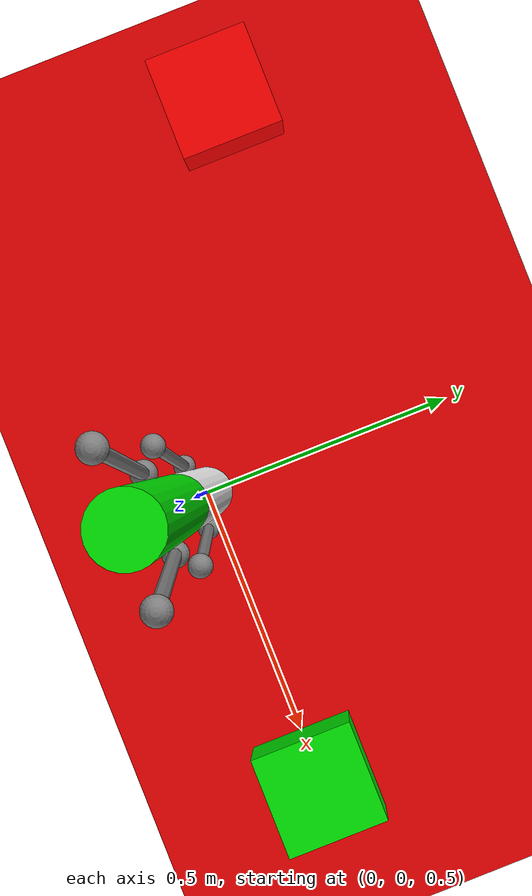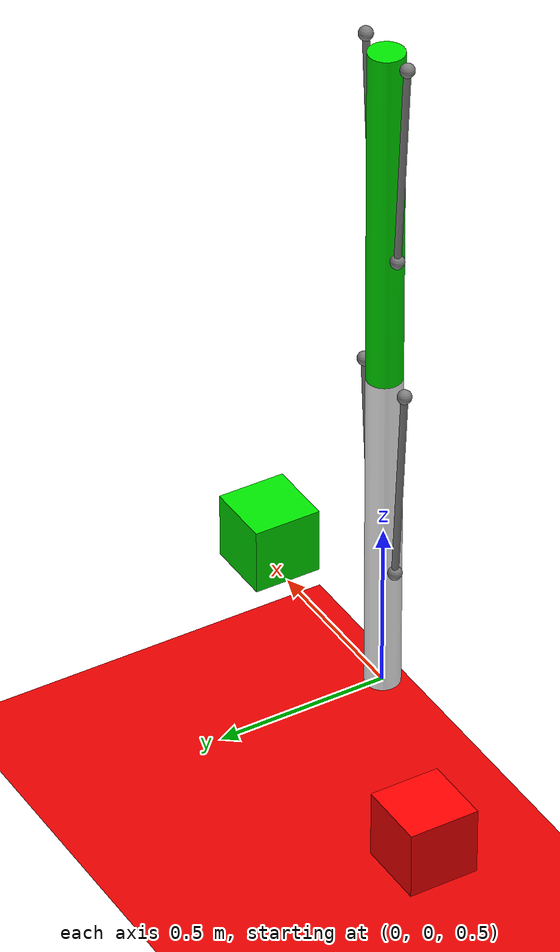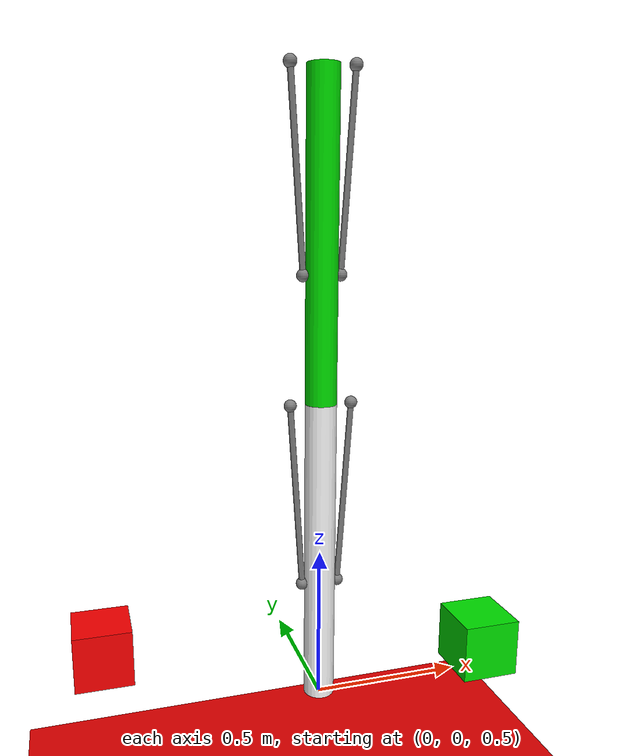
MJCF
<mujoco>
    <!-- min distance from root to endfactor is 1.766, max is 2 -->
    <option timestep="0.001">
		<flag gravity="disable"/>
	</option>
    <size nuserdata="3"/>
   <worldbody>
      <light diffuse=".5 .5 .5" pos="0 0 3" dir="0 0 -1"/>
      <geom type="plane" size="1 1 0.1" rgba=".9 0 0 1"/>

      <site name="s0" pos="0.1 0 2.5" size="0.02"/>
      <site name="s2" pos="-0.1 0 2.5" size="0.02"/>
      <body pos="0 0 1.5" euler="0 0 0">
         <joint name="joint0" type="hinge" axis="0 -1 0" pos="0 0 1" damping="0.001" limited="true" range="-56 56"/>
         <geom name="link0" type="cylinder" pos="0 0 0.5" size="0.05 .5" rgba="0 .9 0 1" mass="1"/>
         <site name="s1" pos="0.06 0 0.4" size="0.02"/>
         <site name="s3" pos="-0.06 0 0.4" size="0.02"/>
         <site name="s4" pos="0.1 0 0" size="0.02"/>
         <site name="s5" pos="-0.1 0 0" size="0.02"/>
         <body pos="0 0 -1" euler="0 0 0">
            <joint name="joint1" type="hinge" axis="0 -1 0" pos="0 0 1" damping="0.001" limited="true" range="-56 56"/>
            <geom name="link1" pos="0 0 0.5" type="cylinder" size="0.05 .5" rgba="1 1 1 1" mass="1"/>
            <site name="s6" pos="0.06 0 0.4" size="0.02"/>
            <site name="s7" pos="-0.06 0 0.4" size="0.02"/>
         </body>
      </body>
      <body name="slider" pos="0.7 0 0.6" euler="0 0 0">
        <joint type="slide" axis="1 0 0" damping="1" limited="true" range="-2 2"/>
        <geom type="box" pos="-0.1 0 0" size="0.1 0.1 0.1" rgba="0 .9 0 1" mass="0.01"/>
      </body>
      <body name="marker" pos="-0.6 0.3 0.6" euler="0 0 0">
        <geom type="box" pos="-0.1 0 0" size="0.1 0.1 0.1" rgba="1 0 0 1" mass="0.01"/>
      </body>
   </worldbody>
   <tendon>
       <spatial name="r-tendon" width="0.01">
            <site site="s0"/>
            <site site="s1"/>
       </spatial>
   </tendon>
   <tendon>
       <spatial name="l-tendon" width="0.01">
            <site site="s2"/>
            <site site="s3"/>
       </spatial>
   </tendon>
    <tendon>
       <spatial name="r-middle" width="0.01">
            <site site="s4"/>
            <site site="s6"/>
       </spatial>
   </tendon>
   <tendon>
       <spatial name="l-middle" width="0.01">
            <site site="s5"/>
            <site site="s7"/>
       </spatial>
   </tendon>
   <actuator>
        <muscle  name="r-muscle" tendon="r-tendon" range="0.75 1.15" scale="400"/>
        <muscle  name="l-muscle" tendon="l-tendon" range="0.75 1.15" scale="400"/>
        <muscle  name="r-ctrl" tendon="r-middle" range="0.75 1.15" scale="400"/>
        <muscle  name="l-ctrl" tendon="l-middle" range="0.75 1.15" scale="400"/>
   </actuator>
</mujoco>
